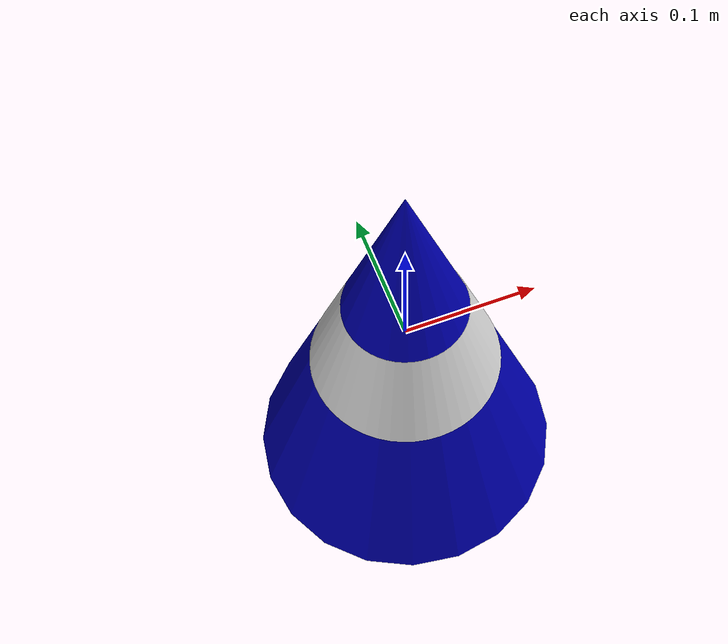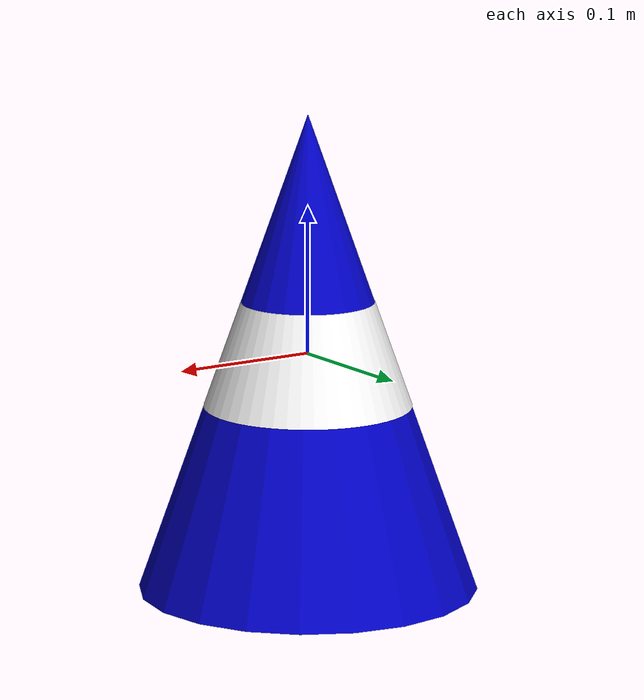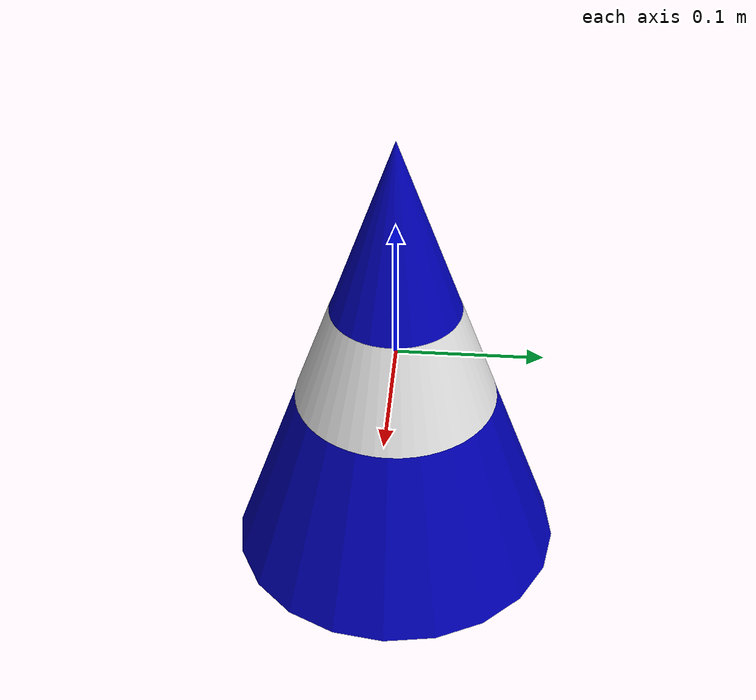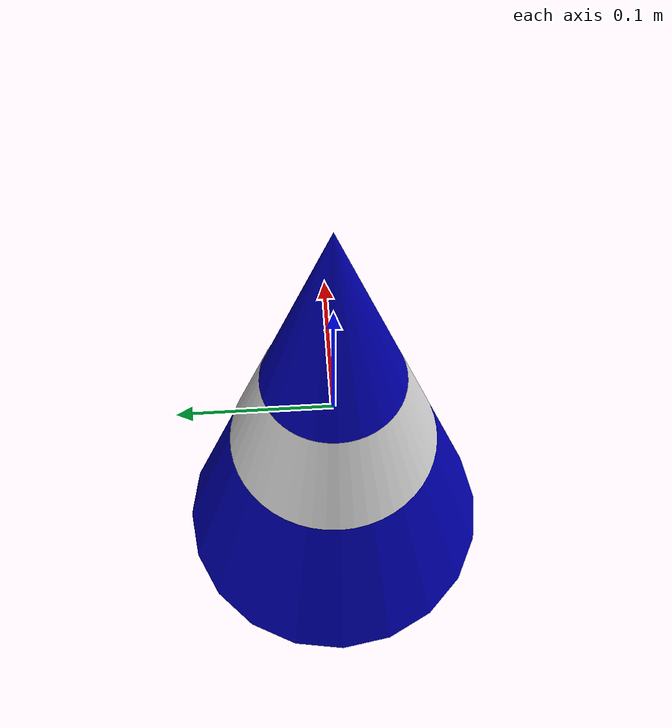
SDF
<?xml version="1.0" ?>
<sdf version="1.11">
  <model name="cone_blue">
    <static>true</static>
    <link name="link">
      <visual name="visual">
        <geometry>
          <cone><radius>0.115</radius><length>0.325</length></cone>
        </geometry>
        <material>
          <ambient>0 0 0.8 1</ambient>
          <diffuse>0 0 0.8 1</diffuse>
        </material>
      </visual>
      <visual name="stripe">
        <pose>0 0 -0.03575 0 0 0</pose>
        <geometry>
          <mesh><uri>meshes/stripe.obj</uri></mesh>
        </geometry>
        <material>
          <ambient>1 1 1 1</ambient>
          <diffuse>1 1 1 1</diffuse>
        </material>
      </visual>
      <collision name="collision">
        <geometry>
          <cone><radius>0.115</radius><length>0.325</length></cone>
        </geometry>
      </collision>
    </link>
  </model>
</sdf>
